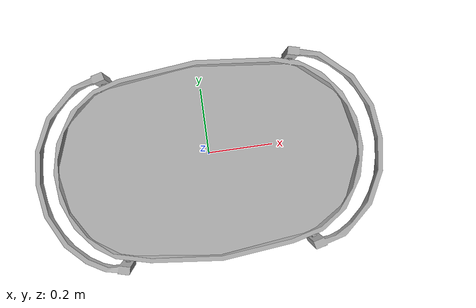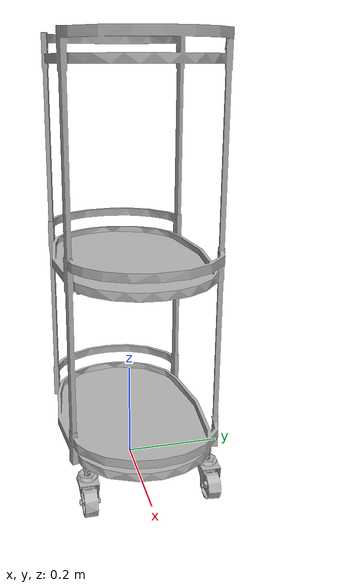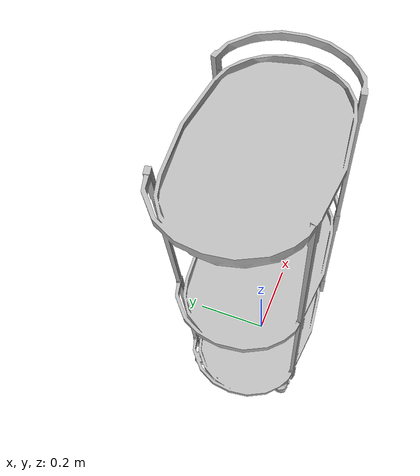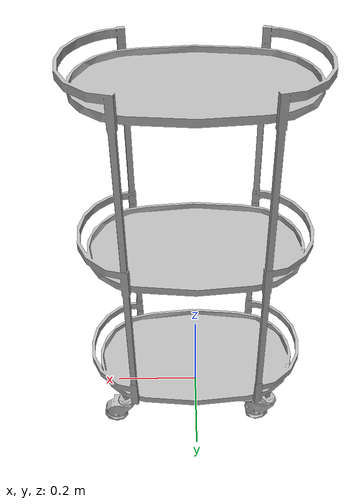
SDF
<sdf version="1.6">
	<model name="ServingCarts_Off3d92b2f4b7_lod0">
		<link name="main_link">
			<visual name="visual_RootNode">
				<geometry>
					<mesh>
						<uri>model://ServingCarts_Off3d92b2f4b7_lod0/meshes/visual_RootNode.dae</uri>
					</mesh>
				</geometry>
			</visual>
			<collision name="collision_RootNode_lod0_0">
				<geometry>
					<mesh>
						<uri>model://ServingCarts_Off3d92b2f4b7_lod0/meshes/collision_RootNode_lod0_0.dae</uri>
					</mesh>
				</geometry>
			</collision>
		</link>
	</model>
</sdf>
